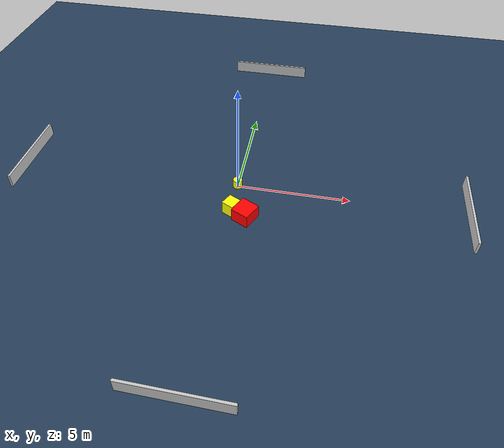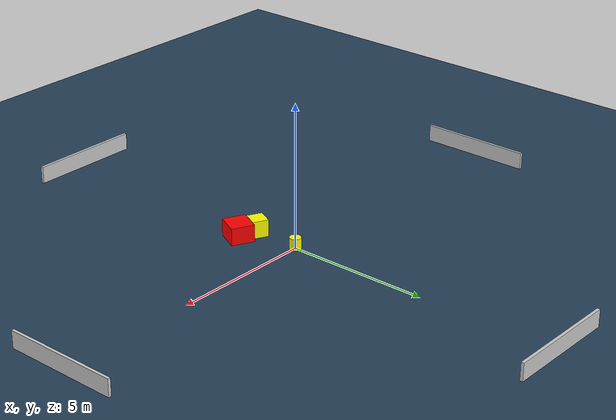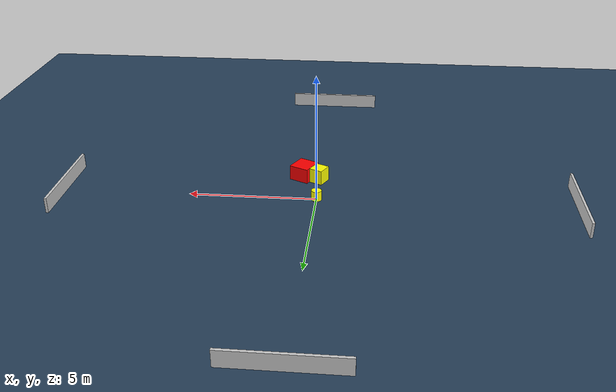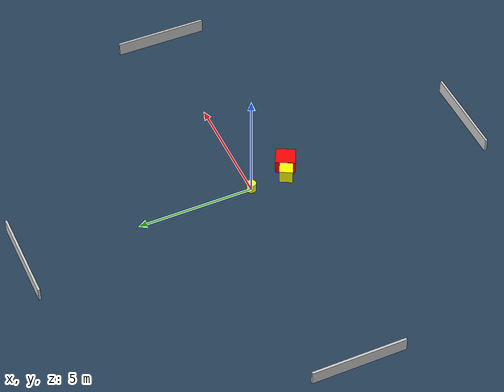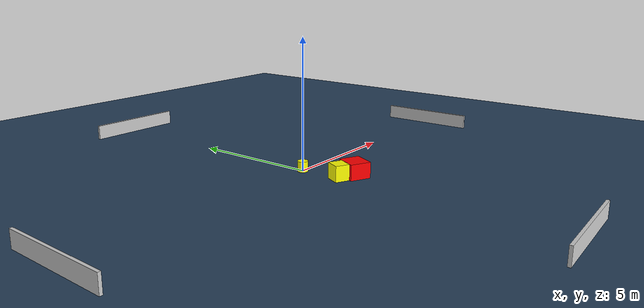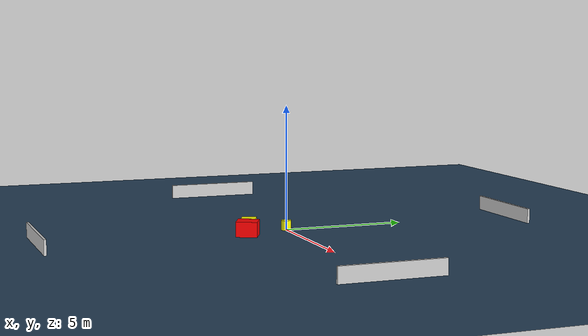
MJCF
<?xml version="1.0" ?>
<mujoco model="generated_environment">
  <option timestep="0.01" integrator="RK4" cone="elliptic"/>
  <default>
    <geom density="1"/>
  </default>
  <asset>
    <texture builtin="gradient" height="3072" name="skybox" rgb1="0.3 0.5 0.7" rgb2="0 0 0" type="skybox" width="512"/>
    <texture builtin="checker" height="300" name="groundplane" rgb1="0.2 0.3 0.4" rgb2="0.1 0.2 0.3" type="2d" width="300"/>
    <material name="groundplane" reflectance="0.2" texrepeat="5 5" texture="groundplane"/>
  </asset>
  <worldbody>
    <light dir="0 0 -1" directional="true" pos="0 0 1.5"/>
    <geom condim="3" friction="0.5 0.005 0.001" material="groundplane" name="floor" pos="0 0 0" size="0 0 0.05" type="plane"/>
    <body name="walls">
      <geom name="wall_1" condim="4" pos="-10.0 0.0 0.3" rgba="0.800000011920929 0.800000011920929 0.800000011920929 1.0" size="0.05 2.0 0.3" type="box"/>
      <geom name="wall_2" condim="4" pos="10.0 0.0 0.3" rgba="0.800000011920929 0.800000011920929 0.800000011920929 1.0" size="0.05 2.0 0.3" type="box"/>
      <geom name="wall_3" condim="4" pos="0.0 -10.0 0.3" rgba="0.800000011920929 0.800000011920929 0.800000011920929 1.0" size="2.0 0.05 0.3" type="box"/>
      <geom name="wall_4" condim="4" pos="0.0 10.0 0.3" rgba="0.800000011920929 0.800000011920929 0.800000011920929 1.0" size="2.0 0.05 0.3" type="box"/>
    </body>
    <body name="robot">
      <joint name="joint_x" type="slide" pos="0 0 0" axis="1 0 0"/>
      <joint name="joint_y" type="slide" pos="0 0 0" axis="0 1 0"/>
      <geom name="robot" type="cylinder" pos="0.0 0.0 0.2" size="0.2 0.2 0.0" mass="5.0" friction="1.0 0.005 0.0001" condim="4" rgba="1.0 1.0 0.0 1.0"/>
    </body>
    <body name="obstacle_1_movable">
      <geom name="obstacle_1_movable" condim="4" pos="0.041380877013138806 -1.6014882073977965 0.3" euler="0 0 63.63231581363205" friction="0.0 0.005 0.001" rgba="1.0 1.0 0.0 1.0" size="0.2858083505397728 0.2762301739594409 0.3" type="box" mass="0.1"/>
      <joint type="free"/>
    </body>
    <body name="obstacle_2_static">
      <geom name="obstacle_2_static" condim="4" pos="0.6777634381543666 -1.8655196485147088 0.3" euler="0 0 153.83945654810552" friction="0.0 0.005 0.001" rgba="1.0 0.0 0.0 1.0" size="0.40443255712008297 0.42496355341142994 0.3" type="box"/>
    </body>
  </worldbody>
  <actuator>
    <motor name="actuator_x" joint="joint_x" gear="1" ctrlrange="-1 1"/>
    <motor name="actuator_y" joint="joint_y" gear="1" ctrlrange="-1 1"/>
  </actuator>
</mujoco>
